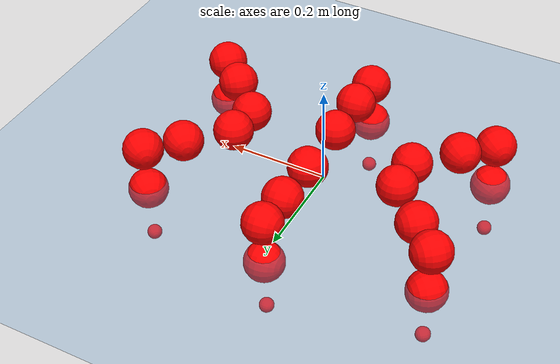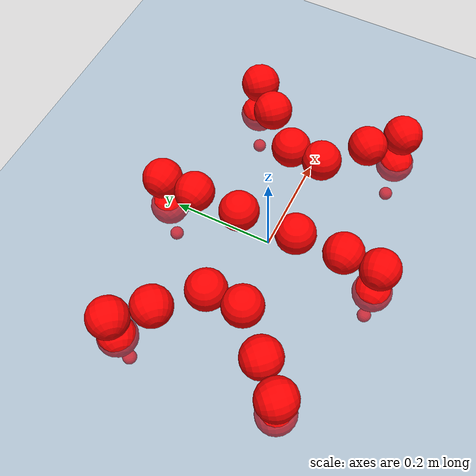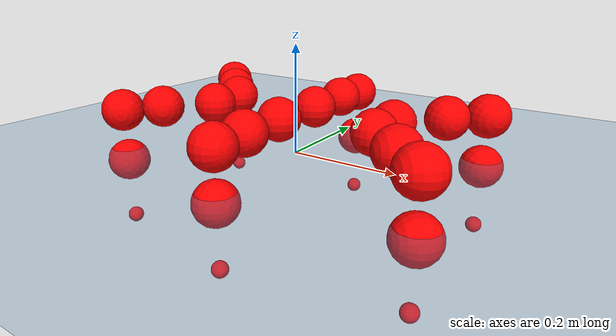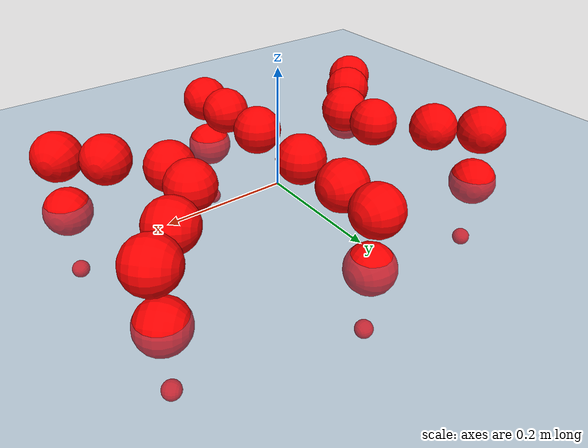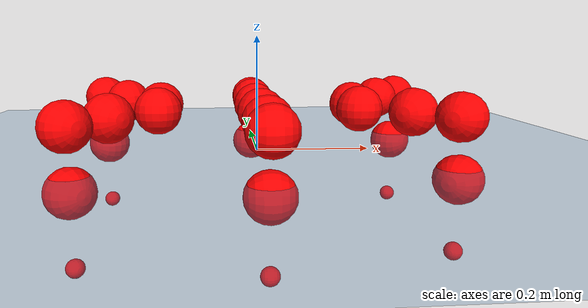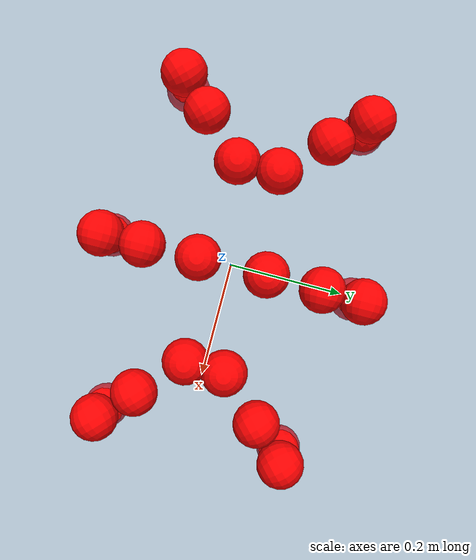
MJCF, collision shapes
<mujoco model="Golem">
  <compiler angle="radian" assetdir="assets" balanceinertia="true" inertiafromgeom="false"/>

  <option timestep="0.005" density="1.2" viscosity="2e-05"/>

  <size nkey="1"/>

  <visual>
    <quality shadowsize="8192"/>
    <map shadowclip="0.5"/>
  </visual>

  <default>
    <default class="/">
      <joint armature="0.01" damping="0.01" frictionloss="0.01"/>
      <geom contype="0" conaffinity="0" group="1" solref="-1000 -80"/>
      <site size="0.01 0.005 0.005" group="5"/>
      <general forcelimited="true" biastype="affine" gainprm="25" biasprm="0 -25 -0.5"/>
      <default class="visual">
        <geom type="mesh" group="2"/>
      </default>
      <default class="collision">
        <geom group="3"/>
      </default>
      <default class="foot">
        <geom size="0.01 0 0" condim="6" group="4" priority="1" solimp="0.015 1 0.01"/>
      </default>
      <default class="reward_collision_sphere">
        <geom group="5" rgba="1 0 0 1"/>
      </default>
    </default>
  </default>

  <asset>
    <texture type="skybox" colorspace="auto" name="//unnamed_texture_0" builtin="gradient" rgb1="0.95 0.95 0.95" rgb2="0.95 0.95 0.95" width="100" height="600"/>
    <texture type="2d" colorspace="auto" name="texplane" builtin="checker" rgb1="0.345 0.575 0.748" rgb2="0.345 0.575 0.748" markrgb="1 1 1" width="512" height="512"/>
    <material name="MatPlane" class="/" texture="texplane" texuniform="true" texrepeat="2 2" specular="0.9"/>
    <mesh name="body" class="/" file="body.stl" scale="0.001 0.001 0.001"/>
    <mesh name="coxa" class="/" file="coxa.stl" scale="0.001 0.001 0.001"/>
    <mesh name="femur" class="/" file="femur.stl" scale="0.001 0.001 0.001"/>
    <mesh name="tibia" class="/" file="tibia.stl" scale="0.001 0.001 0.001"/>
    <mesh name="tarsus" class="/" file="tarsus.stl" scale="0.001 0.001 0.001"/>
  </asset>

  <worldbody>
    <geom name="floor" class="/" size="100 100 0.125" type="plane" group="0" material="MatPlane"/>
    <light name="toplight_shadow" class="/" pos="0 0 5" dir="0.0990148 0.0990148 -0.990148" type="directional" ambient="0.04 0.04 0.04" diffuse="0.55 0.55 0.55" specular="0.12 0.12 0.12"/>
    <light name="toplight_fill" class="/" pos="0 0 5" dir="0.0990148 0.0990148 -0.990148" type="directional" castshadow="false" ambient="0.04 0.04 0.04" diffuse="0.3 0.3 0.3" specular="0.08 0.08 0.08"/>
    <body name="trunk" pos="0.00257826 0.00120926 0.0027731" quat="1 3.89654e-05 -0.000208947 0.000370849">
      <inertial pos="-0.00212331 -0.00179711 -0.00130901" quat="0.999994 0.00229278 0.00113124 0.00235057" mass="3.67828" diaginertia="0.0157866 0.00162888 0.0208893"/>
      <joint name="//unnamed_joint_0" type="free"/>
      <geom name="//unnamed_geom_1" class="/" pos="0 0 0.0738779" quat="1 0 0 0" type="mesh" rgba="0.9 0.9 0.9 1" mesh="body"/>
      <site name="imu" class="/" pos="0.143853 -0.013299 0.116964" size="0.00982377"/>
      <camera name="track" class="/" pos="0 -1.38866 0" quat="0.707107 0.707107 0 0" mode="trackcom"/>
      <camera name="ego_camera" class="/" pos="0.142799 0 0.115434" quat="-0.5 -0.5 0.5 0.5"/>
      <body name="coxa_RR" pos="-0.193748 -0.057421 0.0742021" quat="0.382095 -9.72444e-05 -0.000362772 -0.924123">
        <inertial pos="-0.000472447 -0.000334121 0.00080205" quat="0.9999 -0.00174747 -0.013567 0.00358188" mass="0.196215" diaginertia="0.0162468 0.0015773 0.0205531"/>
        <joint name="coxa_joint_RR" class="/" pos="0 0 0" axis="0.000605888 -0.0008443 -0.999999" stiffness="0.00819747" range="-3.09396 3.14395" armature="0.00981907" damping="0.00803866" frictionloss="0.00968054"/>
        <geom name="//unnamed_geom_2" class="/" type="mesh" rgba="0.2 0.2 0.2 1" mesh="coxa"/>
        <geom name="//unnamed_geom_3" class="reward_collision_sphere" size="0.0392951" pos="-0.0329537 0 0"/>
        <body name="femur_RR" pos="0.0652419 0.00110795 -0.00102704" quat="0.49969 -0.500015 0.49981 0.500484">
          <inertial pos="-0.00223828 0.000541098 -0.00143709" quat="1 5.1152e-06 2.14321e-05 4.13819e-05" mass="0.191763" diaginertia="0.0161769 0.00163167 0.0207318"/>
          <joint name="femur_joint_RR" class="/" pos="0 0 0" axis="0.00547112 1.2388e-05 -0.999985" stiffness="0.00339419" range="-3.19229 3.19535" armature="0.00852332" damping="0.000123154" frictionloss="0.00991531"/>
          <geom name="//unnamed_geom_4" class="/" type="mesh" rgba="0.9 0.9 0.9 1" mesh="femur"/>
          <geom name="//unnamed_geom_5" class="reward_collision_sphere" size="0.0392951"/>
          <body name="tibia_RR" pos="0.00340665 -0.0739979 0.000941428" quat="-3.02954e-05 1 -1.951e-05 2.10631e-05">
            <inertial pos="0.00272553 -0.00108333 0.0013456" quat="0.999901 -0.00114996 0.013675 -0.00325474" mass="0.190938" diaginertia="0.0167342 0.00171559 0.0212398"/>
            <joint name="tibia_joint_RR" class="/" pos="0 0 0" axis="0.009385 -0.00851417 0.99992" range="-3.19583 3.14816" armature="0.0093887" damping="0.0212497" frictionloss="0.0100336"/>
            <geom name="//unnamed_geom_6" class="/" type="mesh" rgba="0.2 0.2 0.2 1" mesh="tibia"/>
            <geom name="//unnamed_geom_7" class="reward_collision_sphere" size="0.0392951"/>
            <body name="tarsus_RR" pos="0.0986568 -0.00104478 -0.000595063" quat="1 -0.000174646 8.51439e-05 -7.87989e-05">
              <inertial pos="0.0690208 -0.000191592 -0.00187736" quat="0.504174 0.504105 0.503741 0.487783" mass="0.191033" diaginertia="0.0156272 0.00167239 0.0208157"/>
              <joint name="tarsus_joint_RR" class="/" pos="0 0 0" axis="-0.000404012 0.00635259 0.99998" range="-3.12872 3.14228" armature="0.0110473" damping="0.0404922" frictionloss="0.0112148"/>
              <geom name="//unnamed_geom_8" class="/" type="mesh" rgba="0.9 0.9 0.9 1" mesh="tarsus"/>
              <geom name="foot_1" class="foot" size="0.0106876" pos="0.123027 0 0" quat="0 -0.707107 0 0.707107"/>
              <geom name="//unnamed_geom_10" class="reward_collision_sphere" size="0.0392951"/>
              <geom name="//unnamed_geom_11" class="reward_collision_sphere" size="0.0147357" pos="0.118084 0 0"/>
              <site name="foot_1" class="foot" pos="0.123027 0 0" quat="0 -0.707107 0 0.707107" size="0.00982377"/>
            </body>
          </body>
        </body>
      </body>
      <body name="coxa_RM" pos="-0.000130509 -0.0892509 0.0738701" quat="0.707057 -1.96074e-05 0.000205194 -0.707157">
        <inertial pos="5.07412e-05 0.00297707 0.00248716" quat="0.999987 -0.00211462 0.0044734 -0.000982915" mass="0.187354" diaginertia="0.0163125 0.00167013 0.0209699"/>
        <joint name="coxa_joint_RM" class="/" pos="0 0 0" axis="-0.00850533 0.00441618 -0.999954" range="-3.16271 3.099" armature="0.0101286" damping="0.0252412" frictionloss="0.00988584"/>
        <geom name="//unnamed_geom_12" class="/" type="mesh" rgba="0.2 0.2 0.2 1" mesh="coxa"/>
        <geom name="//unnamed_geom_13" class="reward_collision_sphere" size="0.0392951" pos="-0.0329537 0 0"/>
        <body name="femur_RM" pos="0.0621261 0.00230774 -0.000173009" quat="0.499797 -0.500043 0.499969 0.500191">
          <inertial pos="-9.83942e-05 -0.00302491 0.00224477" quat="0.999971 -0.00480778 0.000180421 0.00594238" mass="0.192141" diaginertia="0.0158335 0.00157429 0.0205362"/>
          <joint name="femur_joint_RM" class="/" pos="0 0 0" axis="-0.00453734 -0.00630747 -0.99997" range="-3.10794 3.08264" armature="0.00997815" damping="0" frictionloss="0.0103268"/>
          <geom name="//unnamed_geom_14" class="/" type="mesh" rgba="0.9 0.9 0.9 1" mesh="femur"/>
          <geom name="//unnamed_geom_15" class="reward_collision_sphere" size="0.0392951"/>
          <body name="tibia_RM" pos="0.00272888 -0.0715287 -8.98381e-05" quat="-0.000129134 1 2.79958e-05 -0.000144566">
            <inertial pos="-0.000354421 -0.000955622 0.00253215" quat="0.999999 -0.00102179 1.27016e-05 0.000792767" mass="0.187097" diaginertia="0.0160938 0.00160703 0.0202447"/>
            <joint name="tibia_joint_RM" class="/" pos="0 0 0" axis="0.000216236 -0.0028301 0.999996" stiffness="0.000473834" range="-3.15994 3.19595" armature="0.011294" damping="0.012734" frictionloss="0.0111955"/>
            <geom name="//unnamed_geom_16" class="/" type="mesh" rgba="0.2 0.2 0.2 1" mesh="tibia"/>
            <geom name="//unnamed_geom_17" class="reward_collision_sphere" size="0.0392951"/>
            <body name="tarsus_RM" pos="0.0936111 -0.00109185 0.00246298" quat="1 0.000741364 0.000205574 0.000216915">
              <inertial pos="0.0670158 -1.04645e-05 -0.000376445" quat="0.500335 0.498189 0.500342 0.501129" mass="0.195836" diaginertia="0.0170627 0.00165286 0.0210489"/>
              <joint name="tarsus_joint_RM" class="/" pos="0 0 0" axis="-0.00609427 -0.00126267 0.999981" range="-3.1436 3.16054" armature="0.00918781" damping="0.0133653" frictionloss="0.00971753"/>
              <geom name="//unnamed_geom_18" class="/" type="mesh" rgba="0.9 0.9 0.9 1" mesh="tarsus"/>
              <geom name="foot_2" class="foot" size="0.00908731" pos="0.123027 0 0" quat="0 -0.707107 0 0.707107"/>
              <geom name="//unnamed_geom_20" class="reward_collision_sphere" size="0.0392951"/>
              <geom name="//unnamed_geom_21" class="reward_collision_sphere" size="0.0147357" pos="0.118084 0 0"/>
              <site name="foot_2" class="foot" pos="0.123027 0 0" quat="0 -0.707107 0 0.707107" size="0.00982377"/>
            </body>
          </body>
        </body>
      </body>
      <body name="coxa_RF" pos="0.195105 -0.0559423 0.073945" quat="0.923883 3.26891e-06 9.73075e-06 -0.382675">
        <inertial pos="0.00174441 0.000457821 3.20214e-05" quat="1 -0.000327375 1.67107e-05 -0.000242275" mass="0.191942" diaginertia="0.0162077 0.00164558 0.0202506"/>
        <joint name="coxa_joint_RF" class="/" pos="0 0 0" axis="0.00078543 -0.00471732 -0.999989" range="-3.19394 3.14167" armature="0.00832178" damping="0.0181346" frictionloss="0.0101004"/>
        <geom name="//unnamed_geom_22" class="/" type="mesh" rgba="0.2 0.2 0.2 1" mesh="coxa"/>
        <geom name="//unnamed_geom_23" class="reward_collision_sphere" size="0.0392951" pos="-0.0329537 0 0"/>
        <body name="femur_RF" pos="0.0654088 0.00116232 0.00303866" quat="0.499961 -0.500454 0.499809 0.499776">
          <inertial pos="0.00103927 -0.00115705 -0.00206145" quat="0.999953 0.0090947 0.00344961 0.000469418" mass="0.183637" diaginertia="0.0154423 0.00161096 0.0207819"/>
          <joint name="femur_joint_RF" class="/" pos="0 0 0" axis="0.00053252 -8.72409e-05 -1" range="-3.10825 3.14195" armature="0.0110264" damping="0" frictionloss="0.0110441"/>
          <geom name="//unnamed_geom_24" class="/" type="mesh" rgba="0.9 0.9 0.9 1" mesh="femur"/>
          <geom name="//unnamed_geom_25" class="reward_collision_sphere" size="0.0392951"/>
          <body name="tibia_RF" pos="0.00105505 -0.0773332 0.00205692" quat="-0.000135788 1 4.43076e-05 -0.000206538">
            <inertial pos="0.00231395 0.00276287 -0.00146576" quat="0.999951 -0.00353167 0.00927002 0.000131862" mass="0.191033" diaginertia="0.0159693 0.00155917 0.0210592"/>
            <joint name="tibia_joint_RF" class="/" pos="0 0 0" axis="-0.0002107 0.000143382 1" range="-3.14801 3.11354" armature="0.0110219" damping="0" frictionloss="0.00883771"/>
            <geom name="//unnamed_geom_26" class="/" type="mesh" rgba="0.2 0.2 0.2 1" mesh="tibia"/>
            <geom name="//unnamed_geom_27" class="reward_collision_sphere" size="0.0392951"/>
            <body name="tarsus_RF" pos="0.0984297 0.000460476 -0.00163089" quat="1 -2.67623e-05 6.11254e-05 -0.000380824">
              <inertial pos="0.0658143 -0.000627792 -0.00143717" quat="0.500558 0.499591 0.499729 0.500122" mass="0.186858" diaginertia="0.0163846 0.00163192 0.0208455"/>
              <joint name="tarsus_joint_RF" class="/" pos="0 0 0" axis="-0.0102092 -0.0016486 0.999947" stiffness="0.0142905" range="-3.1257 3.14535" armature="0.00949438" damping="0.00425207" frictionloss="0.00990009"/>
              <geom name="//unnamed_geom_28" class="/" type="mesh" rgba="0.9 0.9 0.9 1" mesh="tarsus"/>
              <geom name="foot_3" class="foot" size="0.00895085" pos="0.123027 0 0" quat="0 -0.707107 0 0.707107"/>
              <geom name="//unnamed_geom_30" class="reward_collision_sphere" size="0.0392951"/>
              <geom name="//unnamed_geom_31" class="reward_collision_sphere" size="0.0147357" pos="0.118084 0 0"/>
              <site name="foot_3" class="foot" pos="0.123027 0 0" quat="0 -0.707107 0 0.707107" size="0.00982377"/>
            </body>
          </body>
        </body>
      </body>
      <body name="coxa_LR" pos="-0.195244 0.0603082 0.0763502" quat="0.382583 -0.000703808 0.00109163 0.92392">
        <inertial pos="-0.00193301 -0.000424417 0.00318202" quat="0.999947 -0.0099345 -0.00136875 -0.00224527" mass="0.191005" diaginertia="0.0159957 0.00162204 0.0201455"/>
        <joint name="coxa_joint_LR" class="/" pos="0 0 0" axis="-0.00714963 -0.0140008 -0.999876" range="-3.19336 3.15137" armature="0.00927107" damping="0.0180291" frictionloss="0.00962821"/>
        <geom name="//unnamed_geom_32" class="/" type="mesh" rgba="0.2 0.2 0.2 1" mesh="coxa"/>
        <geom name="//unnamed_geom_33" class="reward_collision_sphere" size="0.0392951" pos="-0.0329537 0 0"/>
        <body name="femur_LR" pos="0.0656148 -0.000908349 -0.000921149" quat="0.500279 -0.500907 0.499473 0.499339">
          <inertial pos="0.00236833 0.000228996 0.00123967" quat="0.999994 0.00160713 0.000672277 0.00296731" mass="0.181928" diaginertia="0.0157159 0.00160124 0.0203006"/>
          <joint name="femur_joint_LR" class="/" pos="0 0 0" axis="0.00820107 0.0129362 0.999883" range="-3.14121 3.09775" armature="0.0110583" damping="0" frictionloss="0.00990869"/>
          <geom name="//unnamed_geom_34" class="/" type="mesh" rgba="0.9 0.9 0.9 1" mesh="femur"/>
          <geom name="//unnamed_geom_35" class="reward_collision_sphere" size="0.0392951"/>
          <body name="tibia_LR" pos="-0.00182564 -0.0762101 -0.0028407" quat="-0.000567864 0.999999 0.00056418 0.0012234">
            <inertial pos="0.000432944 -0.000156481 0.00235057" quat="0.999903 -0.0128824 -0.00317854 -0.00414118" mass="0.187491" diaginertia="0.0163216 0.00165009 0.0203862"/>
            <joint name="tibia_joint_LR" class="/" pos="0 0 0" axis="-0.00251437 -0.000158942 -0.999997" range="-3.18079 3.19394" armature="0.00857612" damping="0.0186193" frictionloss="0.0111647"/>
            <geom name="//unnamed_geom_36" class="/" type="mesh" rgba="0.2 0.2 0.2 1" mesh="tibia"/>
            <geom name="//unnamed_geom_37" class="reward_collision_sphere" size="0.0392951"/>
            <body name="tarsus_LR" pos="0.0956723 0.00130381 0.00291688" quat="1 -0.00028102 0.00073892 -0.000103656">
              <inertial pos="0.066828 0.000336288 0.000247337" quat="0.491294 0.509296 0.502378 0.496855" mass="0.194378" diaginertia="0.016755 0.0016916 0.0216087"/>
              <joint name="tarsus_joint_LR" class="/" pos="0 0 0" axis="-0.00287338 0.00201262 -0.999994" stiffness="0.000425512" range="-3.16946 3.13031" armature="0.00986636" damping="0.0315445" frictionloss="0.00920241"/>
              <geom name="//unnamed_geom_38" class="/" type="mesh" rgba="0.9 0.9 0.9 1" mesh="tarsus"/>
              <geom name="foot_4" class="foot" size="0.00977818" pos="0.123027 0 0" quat="0.707107 0 -0.707107 0"/>
              <geom name="//unnamed_geom_40" class="reward_collision_sphere" size="0.0392951"/>
              <geom name="//unnamed_geom_41" class="reward_collision_sphere" size="0.0147357" pos="0.118084 0 0"/>
              <site name="foot_4" class="foot" pos="0.123027 0 0" quat="0.707107 0 -0.707107 0" size="0.00982377"/>
            </body>
          </body>
        </body>
      </body>
      <body name="coxa_LM" pos="-0.00120806 0.0934521 0.0715557" quat="0.706291 0.000655452 -4.88901e-05 0.707921">
        <inertial pos="-0.001374 -0.00208197 -0.00225463" quat="0.999998 0.00132094 -0.0013318 0.000991996" mass="0.187941" diaginertia="0.0155552 0.0015935 0.0206524"/>
        <joint name="coxa_joint_LM" class="/" pos="0 0 0" axis="-0.000441081 -0.000104499 -1" range="-3.14394 3.12952" armature="0.0102102" damping="0.0110262" frictionloss="0.0085125"/>
        <geom name="//unnamed_geom_42" class="/" type="mesh" rgba="0.2 0.2 0.2 1" mesh="coxa"/>
        <geom name="//unnamed_geom_43" class="reward_collision_sphere" size="0.0392951" pos="-0.0329537 0 0"/>
        <body name="femur_LM" pos="0.0629096 -0.000825459 0.0012627" quat="0.500016 -0.50001 0.499867 0.500107">
          <inertial pos="0.00226946 0.00261049 0.00114787" quat="0.999994 -0.00188948 -0.00186791 -0.00219338" mass="0.189537" diaginertia="0.0165765 0.00160648 0.0198639"/>
          <joint name="femur_joint_LM" class="/" pos="0 0 0" axis="0.00922445 -0.000387529 0.999957" stiffness="0.00428913" range="-3.14146 3.0953" armature="0.0113204" damping="0" frictionloss="0.0110979"/>
          <geom name="//unnamed_geom_44" class="/" type="mesh" rgba="0.9 0.9 0.9 1" mesh="femur"/>
          <geom name="//unnamed_geom_45" class="reward_collision_sphere" size="0.0392951"/>
          <body name="tibia_LM" pos="0.00280566 -0.0712866 -0.00135552" quat="0.000345373 1 2.80503e-05 -0.000231693">
            <inertial pos="-0.00251553 -0.000679939 -2.89469e-05" quat="1 0.000599978 -0.000543104 0.000279031" mass="0.190982" diaginertia="0.0158062 0.00162733 0.0199569"/>
            <joint name="tibia_joint_LM" class="/" pos="0 0 0" axis="-0.0100818 0.00253345 -0.999946" stiffness="0.00121331" range="-3.12524 3.11401" armature="0.0109861" damping="0.00042049" frictionloss="0.0096426"/>
            <geom name="//unnamed_geom_46" class="/" type="mesh" rgba="0.2 0.2 0.2 1" mesh="tibia"/>
            <geom name="//unnamed_geom_47" class="reward_collision_sphere" size="0.0392951"/>
            <body name="tarsus_LM" pos="0.0990669 -0.00132341 0.00101921" quat="0.999999 -0.00022194 0.000793868 -0.000730025">
              <inertial pos="0.0626075 -0.000670067 -0.00178878" quat="0.498776 0.49923 0.49989 0.502098" mass="0.187751" diaginertia="0.0154615 0.00152381 0.0192096"/>
              <joint name="tarsus_joint_LM" class="/" pos="0 0 0" axis="0.00526696 -0.00357528 -0.99998" stiffness="0.00732978" range="-3.11849 3.11081" armature="0.0085027" damping="0.0270898" frictionloss="0.00987788"/>
              <geom name="//unnamed_geom_48" class="/" type="mesh" rgba="0.9 0.9 0.9 1" mesh="tarsus"/>
              <geom name="foot_5" class="foot" size="0.0097152" pos="0.123027 0 0" quat="0.707107 0 -0.707107 0"/>
              <geom name="//unnamed_geom_50" class="reward_collision_sphere" size="0.0392951"/>
              <geom name="//unnamed_geom_51" class="reward_collision_sphere" size="0.0147357" pos="0.118084 0 0"/>
              <site name="foot_5" class="foot" pos="0.123027 0 0" quat="0.707107 0 -0.707107 0" size="0.00982377"/>
            </body>
          </body>
        </body>
      </body>
      <body name="coxa_LF" pos="0.197119 0.0575044 0.0746407" quat="0.923718 -0.000183485 -7.8373e-05 0.383072">
        <inertial pos="0.00221854 -0.00140821 0.00246888" quat="1 -8.02016e-06 -3.30737e-05 -0.000699519" mass="0.19198" diaginertia="0.0155184 0.00164102 0.0205649"/>
        <joint name="coxa_joint_LF" class="/" pos="0 0 0" axis="0.0193442 -0.00518153 -0.999799" stiffness="0.0136571" range="-3.14217 3.13685" armature="0.00925764" damping="0.00708254" frictionloss="0.0101774"/>
        <geom name="//unnamed_geom_52" class="/" type="mesh" rgba="0.2 0.2 0.2 1" mesh="coxa"/>
        <geom name="//unnamed_geom_53" class="reward_collision_sphere" size="0.0392951" pos="-0.0329537 0 0"/>
        <body name="femur_LF" pos="0.0659645 0.00378567 0.00197705" quat="0.499979 -0.500082 0.499801 0.500138">
          <inertial pos="0.0014626 -0.00266207 0.000634204" quat="0.99993 -0.00149233 -0.00921006 -0.00732439" mass="0.183663" diaginertia="0.0159023 0.0016175 0.0206812"/>
          <joint name="femur_joint_LF" class="/" pos="0 0 0" axis="-0.01049 -0.00535535 0.999931" range="-3.14695 3.13357" armature="0.0111822" damping="0.0121201" frictionloss="0.00932714"/>
          <geom name="//unnamed_geom_54" class="/" type="mesh" rgba="0.9 0.9 0.9 1" mesh="femur"/>
          <geom name="//unnamed_geom_55" class="reward_collision_sphere" size="0.0392951"/>
          <body name="tibia_LF" pos="0.000530398 -0.0777696 0.000226925" quat="0.000670286 0.999999 -0.00082549 0.000846867">
            <inertial pos="-0.000604884 0.00204889 -0.000193079" quat="0.999993 0.00234168 0.00208746 0.00184568" mass="0.18919" diaginertia="0.0161634 0.00159012 0.0205596"/>
            <joint name="tibia_joint_LF" class="/" pos="0 0 0" axis="-0.005844 -0.00648196 -0.999962" stiffness="0.00136695" range="-3.19073 3.18976" armature="0.00938573" damping="0.00824463" frictionloss="0.0108619"/>
            <geom name="//unnamed_geom_56" class="/" type="mesh" rgba="0.2 0.2 0.2 1" mesh="tibia"/>
            <geom name="//unnamed_geom_57" class="reward_collision_sphere" size="0.0392951"/>
            <body name="tarsus_LF" pos="0.0960941 9.83375e-05 -0.00398013" quat="0.999999 0.000239076 -0.000248824 -0.00135229">
              <inertial pos="0.0642425 0.0031668 0.000706312" quat="0.49836 0.501764 0.499652 0.500218" mass="0.183037" diaginertia="0.015268 0.00154104 0.0202451"/>
              <joint name="tarsus_joint_LF" class="/" pos="0 0 0" axis="0.0141471 -0.00886218 -0.999861" stiffness="0.0279223" range="-3.15924 3.15339" armature="0.0100259" damping="0.00269059" frictionloss="0.0102913"/>
              <geom name="//unnamed_geom_58" class="/" type="mesh" rgba="0.9 0.9 0.9 1" mesh="tarsus"/>
              <geom name="foot_6" class="foot" size="0.0102265" pos="0.123027 0 0" quat="0.707107 0 -0.707107 0"/>
              <geom name="//unnamed_geom_60" class="reward_collision_sphere" size="0.0392951"/>
              <geom name="//unnamed_geom_61" class="reward_collision_sphere" size="0.0147357" pos="0.118084 0 0"/>
              <site name="foot_6" class="foot" pos="0.123027 0 0" quat="0.707107 0 -0.707107 0" size="0.00982377"/>
            </body>
          </body>
        </body>
      </body>
    </body>
  </worldbody>

  <contact>
    <pair class="/" geom1="floor" geom2="foot_1" name="//unnamed_contact_0"/>
    <pair class="/" geom1="floor" geom2="foot_2" name="//unnamed_contact_1"/>
    <pair class="/" geom1="floor" geom2="foot_3" name="//unnamed_contact_2"/>
    <pair class="/" geom1="floor" geom2="foot_4" name="//unnamed_contact_3"/>
    <pair class="/" geom1="floor" geom2="foot_5" name="//unnamed_contact_4"/>
    <pair class="/" geom1="floor" geom2="foot_6" name="//unnamed_contact_5"/>
  </contact>

  <actuator>
    <general name="coxa_joint_RR" class="/" joint="coxa_joint_RR" forcerange="-7.89422 7.89422" gainprm="24.1713" biasprm="0 -24.1713 -0.529245"/>
    <general name="femur_joint_RR" class="/" joint="femur_joint_RR" forcerange="-6.41268 6.41268" gainprm="24.1713" biasprm="0 -24.1713 -0.529245"/>
    <general name="tibia_joint_RR" class="/" joint="tibia_joint_RR" forcerange="-7.05288 7.05288" gainprm="24.1713" biasprm="0 -24.1713 -0.529245"/>
    <general name="tarsus_joint_RR" class="/" joint="tarsus_joint_RR" forcerange="-6.45166 6.45166" gainprm="24.1713" biasprm="0 -24.1713 -0.529245"/>
    <general name="coxa_joint_RM" class="/" joint="coxa_joint_RM" forcerange="-7.15656 7.15656" gainprm="24.1713" biasprm="0 -24.1713 -0.529245"/>
    <general name="femur_joint_RM" class="/" joint="femur_joint_RM" forcerange="-6.89715 6.89715" gainprm="24.1713" biasprm="0 -24.1713 -0.529245"/>
    <general name="tibia_joint_RM" class="/" joint="tibia_joint_RM" forcerange="-7.21428 7.21428" gainprm="24.1713" biasprm="0 -24.1713 -0.529245"/>
    <general name="tarsus_joint_RM" class="/" joint="tarsus_joint_RM" forcerange="-6.63269 6.63269" gainprm="24.1713" biasprm="0 -24.1713 -0.529245"/>
    <general name="coxa_joint_RF" class="/" joint="coxa_joint_RF" forcerange="-7.43221 7.43221" gainprm="24.1713" biasprm="0 -24.1713 -0.529245"/>
    <general name="femur_joint_RF" class="/" joint="femur_joint_RF" forcerange="-7.12627 7.12627" gainprm="24.1713" biasprm="0 -24.1713 -0.529245"/>
    <general name="tibia_joint_RF" class="/" joint="tibia_joint_RF" forcerange="-7.93163 7.93163" gainprm="24.1713" biasprm="0 -24.1713 -0.529245"/>
    <general name="tarsus_joint_RF" class="/" joint="tarsus_joint_RF" forcerange="-7.14351 7.14351" gainprm="24.1713" biasprm="0 -24.1713 -0.529245"/>
    <general name="coxa_joint_LR" class="/" joint="coxa_joint_LR" forcerange="-6.69061 6.69061" gainprm="24.1713" biasprm="0 -24.1713 -0.529245"/>
    <general name="femur_joint_LR" class="/" joint="femur_joint_LR" forcerange="-7.84971 7.84971" gainprm="24.1713" biasprm="0 -24.1713 -0.529245"/>
    <general name="tibia_joint_LR" class="/" joint="tibia_joint_LR" forcerange="-7.92235 7.92235" gainprm="24.1713" biasprm="0 -24.1713 -0.529245"/>
    <general name="tarsus_joint_LR" class="/" joint="tarsus_joint_LR" forcerange="-7.20612 7.20612" gainprm="24.1713" biasprm="0 -24.1713 -0.529245"/>
    <general name="coxa_joint_LM" class="/" joint="coxa_joint_LM" forcerange="-7.92727 7.92727" gainprm="24.1713" biasprm="0 -24.1713 -0.529245"/>
    <general name="femur_joint_LM" class="/" joint="femur_joint_LM" forcerange="-7.13375 7.13375" gainprm="24.1713" biasprm="0 -24.1713 -0.529245"/>
    <general name="tibia_joint_LM" class="/" joint="tibia_joint_LM" forcerange="-6.94285 6.94285" gainprm="24.1713" biasprm="0 -24.1713 -0.529245"/>
    <general name="tarsus_joint_LM" class="/" joint="tarsus_joint_LM" forcerange="-6.50365 6.50365" gainprm="24.1713" biasprm="0 -24.1713 -0.529245"/>
    <general name="coxa_joint_LF" class="/" joint="coxa_joint_LF" forcerange="-7.81091 7.81091" gainprm="24.1713" biasprm="0 -24.1713 -0.529245"/>
    <general name="femur_joint_LF" class="/" joint="femur_joint_LF" forcerange="-6.73845 6.73845" gainprm="24.1713" biasprm="0 -24.1713 -0.529245"/>
    <general name="tibia_joint_LF" class="/" joint="tibia_joint_LF" forcerange="-6.96272 6.96272" gainprm="24.1713" biasprm="0 -24.1713 -0.529245"/>
    <general name="tarsus_joint_LF" class="/" joint="tarsus_joint_LF" forcerange="-7.12421 7.12421" gainprm="24.1713" biasprm="0 -24.1713 -0.529245"/>
  </actuator>

  <sensor>
    <gyro site="imu" name="imu_angular_velocity"/>
    <velocimeter site="imu" name="imu_linear_velocity"/>
    <framelinvel objtype="site" objname="foot_1" name="foot_1_global_linear_velocity"/>
    <framelinvel objtype="site" objname="foot_2" name="foot_2_global_linear_velocity"/>
    <framelinvel objtype="site" objname="foot_3" name="foot_3_global_linear_velocity"/>
    <framelinvel objtype="site" objname="foot_4" name="foot_4_global_linear_velocity"/>
    <framelinvel objtype="site" objname="foot_5" name="foot_5_global_linear_velocity"/>
    <framelinvel objtype="site" objname="foot_6" name="foot_6_global_linear_velocity"/>
  </sensor>

  <keyframe>
    <key name="home" qpos="0 0 0.1457 1 0 0 0 0 0 0 0 0 0 0 0 0 0 0 0 0 0 0 0 0 0 0 0 0 0 0 0"/>
  </keyframe>
</mujoco>
